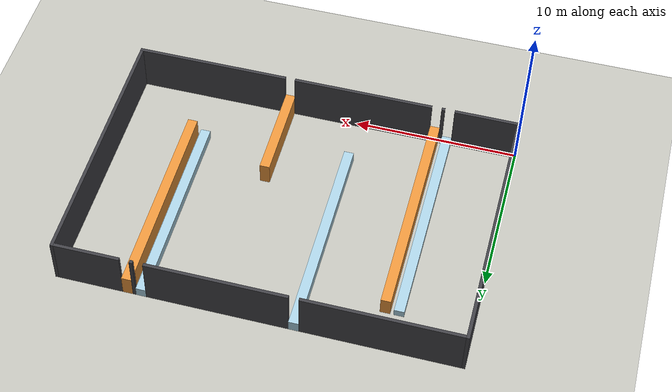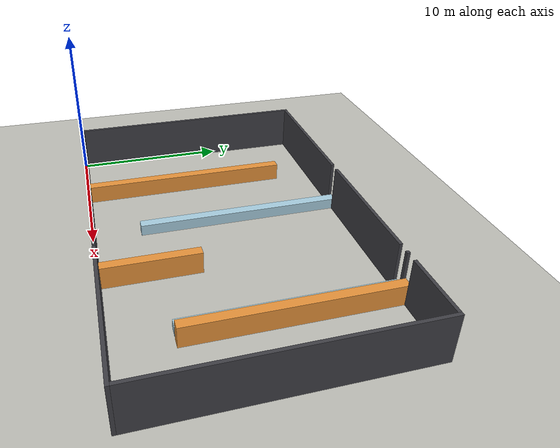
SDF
<?xml version="1.0" ?>
<!-- 자동 생성 파일 — 직접 수정하지 말 것.
     생성: python3 benchmark/export_sdf.py
     원본: benchmark/envs/heightmap.py 의 hard_open
     벽 6개, 인접 벽 높이차 0.70m, 넘기/돌기 판단 연쇄 -->
<sdf version="1.9">
  <world name="hard_open">

    <physics name="1ms" type="ignored">
      <max_step_size>0.001</max_step_size>
      <real_time_factor>1.0</real_time_factor>
    </physics>

    <plugin filename="gz-sim-physics-system" name="gz::sim::systems::Physics">
    </plugin>
    <plugin filename="gz-sim-user-commands-system" name="gz::sim::systems::UserCommands">
    </plugin>
    <plugin filename="gz-sim-scene-broadcaster-system" name="gz::sim::systems::SceneBroadcaster">
    </plugin>
    <plugin filename="gz-sim-contact-system" name="gz::sim::systems::Contact">
    </plugin>
    <plugin filename="gz-sim-imu-system" name="gz::sim::systems::Imu">
    </plugin>
    <plugin filename="gz-sim-sensors-system" name="gz::sim::systems::Sensors">
      <render_engine>ogre</render_engine>
    </plugin>

    <light type="directional" name="sun">
      <cast_shadows>true</cast_shadows>
      <pose>0 0 10 0 0 0</pose>
      <diffuse>0.8 0.8 0.8 1</diffuse>
      <specular>0.2 0.2 0.2 1</specular>
      <direction>-0.5 0.1 -0.9</direction>
    </light>

    <model name="ground_plane">
      <static>true</static>
      <link name="link">
        <collision name="collision">
          <geometry><plane>
            <normal>0 0 1</normal>
            <size>34.0 26.0</size>
          </plane></geometry>
        </collision>
        <visual name="visual">
          <geometry><plane>
            <normal>0 0 1</normal>
            <size>34.0 26.0</size>
          </plane></geometry>
          <material>
            <ambient>0.75 0.75 0.72 1</ambient>
            <diffuse>0.75 0.75 0.72 1</diffuse>
          </material>
        </visual>
      </link>
    </model>

    <model name="obs_0001_h045">
      <static>true</static>
      <pose>4.300 6.750 0.225 0 0 0</pose>
      <link name="link">
        <collision name="collision">
          <geometry><box><size>0.600 13.500 0.450</size></box></geometry>
        </collision>
        <visual name="visual">
          <geometry><box><size>0.600 13.500 0.450</size></box></geometry>
          <material>
            <ambient>0.66 0.81 0.88 1</ambient>
            <diffuse>0.66 0.81 0.88 1</diffuse>
          </material>
        </visual>
      </link>
    </model>
    <model name="obs_0002_h060">
      <static>true</static>
      <pose>18.800 9.750 0.300 0 0 0</pose>
      <link name="link">
        <collision name="collision">
          <geometry><box><size>0.600 12.500 0.600</size></box></geometry>
        </collision>
        <visual name="visual">
          <geometry><box><size>0.600 12.500 0.600</size></box></geometry>
          <material>
            <ambient>0.66 0.81 0.88 1</ambient>
            <diffuse>0.66 0.81 0.88 1</diffuse>
          </material>
        </visual>
      </link>
    </model>
    <model name="obs_0003_h070">
      <static>true</static>
      <pose>9.800 9.500 0.350 0 0 0</pose>
      <link name="link">
        <collision name="collision">
          <geometry><box><size>0.600 13.000 0.700</size></box></geometry>
        </collision>
        <visual name="visual">
          <geometry><box><size>0.600 13.000 0.700</size></box></geometry>
          <material>
            <ambient>0.66 0.81 0.88 1</ambient>
            <diffuse>0.66 0.81 0.88 1</diffuse>
          </material>
        </visual>
      </link>
    </model>
    <model name="obs_0004_h115">
      <static>true</static>
      <pose>5.100 6.750 0.575 0 0 0</pose>
      <link name="link">
        <collision name="collision">
          <geometry><box><size>0.600 13.500 1.150</size></box></geometry>
        </collision>
        <visual name="visual">
          <geometry><box><size>0.600 13.500 1.150</size></box></geometry>
          <material>
            <ambient>0.91 0.58 0.23 1</ambient>
            <diffuse>0.91 0.58 0.23 1</diffuse>
          </material>
        </visual>
      </link>
    </model>
    <model name="obs_0005_h130">
      <static>true</static>
      <pose>19.600 9.750 0.650 0 0 0</pose>
      <link name="link">
        <collision name="collision">
          <geometry><box><size>0.600 12.500 1.300</size></box></geometry>
        </collision>
        <visual name="visual">
          <geometry><box><size>0.600 12.500 1.300</size></box></geometry>
          <material>
            <ambient>0.91 0.58 0.23 1</ambient>
            <diffuse>0.91 0.58 0.23 1</diffuse>
          </material>
        </visual>
      </link>
    </model>
    <model name="obs_0006_h140">
      <static>true</static>
      <pose>14.300 3.000 0.700 0 0 0</pose>
      <link name="link">
        <collision name="collision">
          <geometry><box><size>0.600 6.000 1.400</size></box></geometry>
        </collision>
        <visual name="visual">
          <geometry><box><size>0.600 6.000 1.400</size></box></geometry>
          <material>
            <ambient>0.91 0.58 0.23 1</ambient>
            <diffuse>0.91 0.58 0.23 1</diffuse>
          </material>
        </visual>
      </link>
    </model>
    <model name="obs_0007_h300">
      <static>true</static>
      <pose>2.000 0.100 1.500 0 0 0</pose>
      <link name="link">
        <collision name="collision">
          <geometry><box><size>4.000 0.200 3.000</size></box></geometry>
        </collision>
        <visual name="visual">
          <geometry><box><size>4.000 0.200 3.000</size></box></geometry>
          <material>
            <ambient>0.25 0.25 0.27 1</ambient>
            <diffuse>0.25 0.25 0.27 1</diffuse>
          </material>
        </visual>
      </link>
    </model>
    <model name="obs_0008_h300">
      <static>true</static>
      <pose>4.700 0.100 1.500 0 0 0</pose>
      <link name="link">
        <collision name="collision">
          <geometry><box><size>0.200 0.200 3.000</size></box></geometry>
        </collision>
        <visual name="visual">
          <geometry><box><size>0.200 0.200 3.000</size></box></geometry>
          <material>
            <ambient>0.25 0.25 0.27 1</ambient>
            <diffuse>0.25 0.25 0.27 1</diffuse>
          </material>
        </visual>
      </link>
    </model>
    <model name="obs_0009_h300">
      <static>true</static>
      <pose>9.700 0.100 1.500 0 0 0</pose>
      <link name="link">
        <collision name="collision">
          <geometry><box><size>8.600 0.200 3.000</size></box></geometry>
        </collision>
        <visual name="visual">
          <geometry><box><size>8.600 0.200 3.000</size></box></geometry>
          <material>
            <ambient>0.25 0.25 0.27 1</ambient>
            <diffuse>0.25 0.25 0.27 1</diffuse>
          </material>
        </visual>
      </link>
    </model>
    <model name="obs_0010_h300">
      <static>true</static>
      <pose>19.300 0.100 1.500 0 0 0</pose>
      <link name="link">
        <collision name="collision">
          <geometry><box><size>9.400 0.200 3.000</size></box></geometry>
        </collision>
        <visual name="visual">
          <geometry><box><size>9.400 0.200 3.000</size></box></geometry>
          <material>
            <ambient>0.25 0.25 0.27 1</ambient>
            <diffuse>0.25 0.25 0.27 1</diffuse>
          </material>
        </visual>
      </link>
    </model>
    <model name="obs_0011_h300">
      <static>true</static>
      <pose>0.100 8.100 1.500 0 0 0</pose>
      <link name="link">
        <collision name="collision">
          <geometry><box><size>0.200 15.800 3.000</size></box></geometry>
        </collision>
        <visual name="visual">
          <geometry><box><size>0.200 15.800 3.000</size></box></geometry>
          <material>
            <ambient>0.25 0.25 0.27 1</ambient>
            <diffuse>0.25 0.25 0.27 1</diffuse>
          </material>
        </visual>
      </link>
    </model>
    <model name="obs_0012_h300">
      <static>true</static>
      <pose>23.900 8.100 1.500 0 0 0</pose>
      <link name="link">
        <collision name="collision">
          <geometry><box><size>0.200 15.800 3.000</size></box></geometry>
        </collision>
        <visual name="visual">
          <geometry><box><size>0.200 15.800 3.000</size></box></geometry>
          <material>
            <ambient>0.25 0.25 0.27 1</ambient>
            <diffuse>0.25 0.25 0.27 1</diffuse>
          </material>
        </visual>
      </link>
    </model>
    <model name="obs_0013_h300">
      <static>true</static>
      <pose>4.850 15.900 1.500 0 0 0</pose>
      <link name="link">
        <collision name="collision">
          <geometry><box><size>9.300 0.200 3.000</size></box></geometry>
        </collision>
        <visual name="visual">
          <geometry><box><size>9.300 0.200 3.000</size></box></geometry>
          <material>
            <ambient>0.25 0.25 0.27 1</ambient>
            <diffuse>0.25 0.25 0.27 1</diffuse>
          </material>
        </visual>
      </link>
    </model>
    <model name="obs_0014_h300">
      <static>true</static>
      <pose>14.300 15.900 1.500 0 0 0</pose>
      <link name="link">
        <collision name="collision">
          <geometry><box><size>8.400 0.200 3.000</size></box></geometry>
        </collision>
        <visual name="visual">
          <geometry><box><size>8.400 0.200 3.000</size></box></geometry>
          <material>
            <ambient>0.25 0.25 0.27 1</ambient>
            <diffuse>0.25 0.25 0.27 1</diffuse>
          </material>
        </visual>
      </link>
    </model>
    <model name="obs_0015_h300">
      <static>true</static>
      <pose>19.200 15.900 1.500 0 0 0</pose>
      <link name="link">
        <collision name="collision">
          <geometry><box><size>0.200 0.200 3.000</size></box></geometry>
        </collision>
        <visual name="visual">
          <geometry><box><size>0.200 0.200 3.000</size></box></geometry>
          <material>
            <ambient>0.25 0.25 0.27 1</ambient>
            <diffuse>0.25 0.25 0.27 1</diffuse>
          </material>
        </visual>
      </link>
    </model>
    <model name="obs_0016_h300">
      <static>true</static>
      <pose>21.850 15.900 1.500 0 0 0</pose>
      <link name="link">
        <collision name="collision">
          <geometry><box><size>3.900 0.200 3.000</size></box></geometry>
        </collision>
        <visual name="visual">
          <geometry><box><size>3.900 0.200 3.000</size></box></geometry>
          <material>
            <ambient>0.25 0.25 0.27 1</ambient>
            <diffuse>0.25 0.25 0.27 1</diffuse>
          </material>
        </visual>
      </link>
    </model>

  </world>
</sdf>
